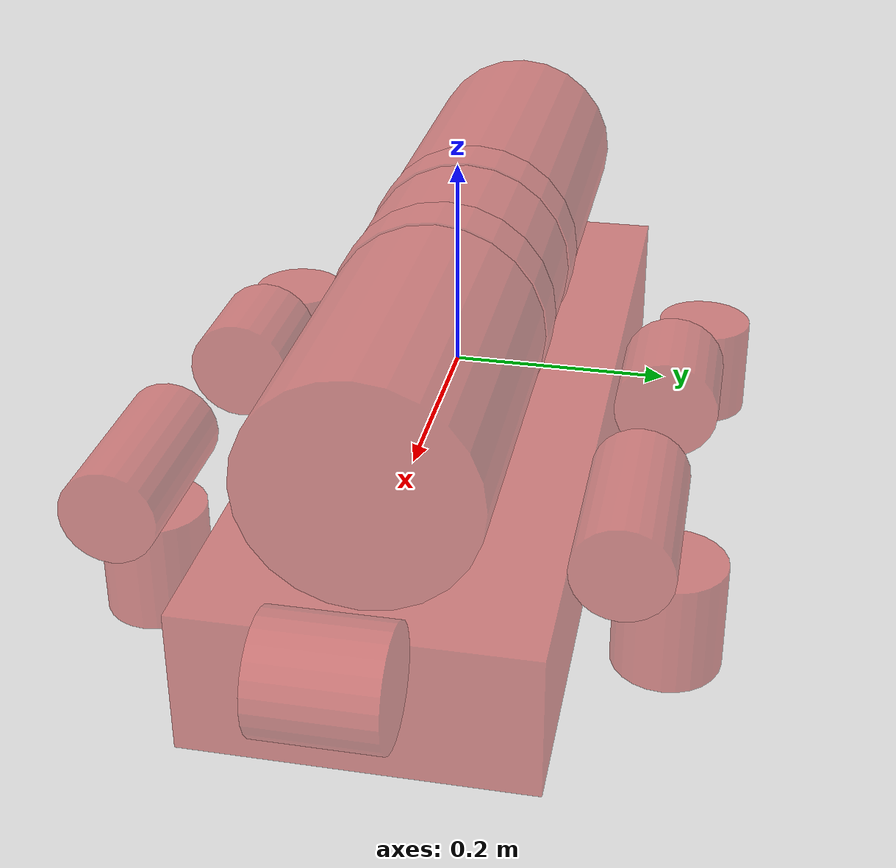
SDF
<?xml version='1.0'?>
<sdf version='1.5'>

  <model name='cobalt_vis'>
    <pose>0 0 0.0 0 0 0</pose>
    <self_collide> 0 </self_collide>
    <static>true</static>

    <joint name="hull_frame" type="fixed">
        <parent>frame</parent>
        <child>hull</child>
    </joint>

    <joint name='dive_front_left_frame' type="fixed">
        <parent>frame</parent>
        <child>dive_front_left</child>
    </joint>

    <joint name='dive_front_right_frame' type="fixed">
        <parent>frame</parent>
        <child>dive_front_right</child>
    </joint>

    <joint name='dive_back_left_frame' type="fixed">
        <parent>frame</parent>
        <child>dive_back_left</child>
    </joint>

    <joint name='dive_back_right_frame' type="fixed">
        <parent>frame</parent>
        <child>dive_back_right</child>
    </joint>

    <joint name='strafe_front_frame' type="fixed">
        <parent>frame</parent>
        <child>strafe_front</child>
    </joint>

    <joint name='strafe_back_frame' type="fixed">
        <parent>frame</parent>
        <child>strafe_back</child>
    </joint>

    <joint name='forward_left_frame' type="fixed">
        <parent>frame</parent>
        <child>forward_left</child>
    </joint>

    <joint name='forward_right_frame' type="fixed">
        <parent>frame</parent>
        <child>forward_right</child>
    </joint>

    <joint name='left_camera_frame' type="fixed">
        <parent>frame</parent>
        <child>left_camera</child>
    </joint>

    <joint name='right_camera_frame' type="fixed">
        <parent>frame</parent>
        <child>right_camera</child>
    </joint>

    <joint name='hydrophone_h0_frame' type="fixed">
        <parent>frame</parent>
        <child>hydrophone_h0</child>
    </joint>

    <joint name='hydrophone_hx_frame' type="fixed">
        <parent>frame</parent>
        <child>hydrophone_hx</child>
    </joint>

    <joint name='hydrophone_hy_frame' type="fixed">
        <parent>frame</parent>
        <child>hydrophone_hy</child>
    </joint>

    <joint name='hydrophone_hz_frame' type="fixed">
        <parent>frame</parent>
        <child>hydrophone_hz</child>
    </joint>

    <link name='hull'>
      <pose>0 0 .082 1.57079632679 0 1.57079632679 </pose>
      <visual name='bulkhead_visual'>
        <geometry>
              <cylinder>
                <radius>0.1</radius>
                <length>.13</length>
              </cylinder>
        </geometry>
        <material>
            <script>
              <uri>file://media/materials/scripts/gazebo.material</uri>
              <name>Gazebo/RedGlow</name>
            </script>
          </material>
        <transparency>0.5</transparency>
      </visual>
      <visual name='front_ring_visual'>
      <pose>0 0 .075 0 0 0</pose>
        <geometry>
              <cylinder>
                <radius>0.102</radius>
                <length>.05</length>
              </cylinder>
        </geometry>
        <material>
            <script>
              <uri>file://media/materials/scripts/gazebo.material</uri>
              <name>Gazebo/RedGlow</name>
            </script>
          </material>
        <transparency>0.5</transparency>
      </visual>
      <visual name='rear_ring_visual'>
      <pose>0 0 -.075 0 0 0</pose>
        <geometry>
              <cylinder>
                <radius>0.102</radius>
                <length>.05</length>
              </cylinder>
        </geometry>
        <material>
            <script>
              <uri>file://media/materials/scripts/gazebo.material</uri>
              <name>Gazebo/RedGlow</name>
            </script>
          </material>
        <transparency>0.5</transparency>
      </visual>
      <visual name='front_tube_visual'>
      <pose>0 0 .235 0 0 0</pose>
        <geometry>
              <cylinder>
                <radius>0.1</radius>
                <length>.32</length>
              </cylinder>
        </geometry>
        <material>
            <script>
              <uri>file://media/materials/scripts/gazebo.material</uri>
              <name>Gazebo/RedGlow</name>
            </script>
            <diffuse>0.6 0.6 0.6 0.6</diffuse>
          </material>
        <transparency>0.5</transparency>
      </visual>
      <visual name='rear_tube_visual'>
      <pose>0 0 -.235 0 0 0</pose>
        <geometry>
              <cylinder>
                <radius>0.1</radius>
                <length>.32</length>
              </cylinder>
        </geometry>
        <material>
            <script>
              <uri>file://media/materials/scripts/gazebo.material</uri>
              <name>Gazebo/RedGlow</name>
            </script>
            <diffuse>0.6 0.6 0.6 0.6</diffuse>
          </material>
        <transparency>0.5</transparency>
      </visual>
    </link>

    <link name='hydrophone_h0'>
      <pose> 0 0 0 0 0 0 </pose>
    </link>

    <link name='hydrophone_hx'>
      <pose> 3 0 0 0 0 0 </pose>
    </link>

    <link name='hydrophone_hy'>
      <pose> 0 3 0 0 0 0 </pose>
    </link>

    <link name='hydrophone_hz'>
      <pose> 0 0 3 0 0 0 </pose>
    </link>

    <link name='frame'>
      <pose>0 0 -0.088 0 0 0</pose>
      <visual name='frame_visual'>
        <geometry>
              <box>
                <size>.85 .3 .13</size>
              </box>
            </geometry>
          <material>
            <script>
              <uri>file://media/materials/scripts/gazebo.material</uri>
              <name>Gazebo/RedGlow</name>
            </script>
          </material>
        <transparency>0.5</transparency>
      </visual>

    </link>

    <link name='dive_front_left'>
      <pose>0.235 0.23 -0.1 0 3.14159 0</pose>
      <visual name='dive_front_left_visual'>
        <geometry>
          <cylinder>
            <radius>0.0485</radius>
            <length>0.101</length>
          </cylinder>
        </geometry>
      <material>
        <script>
          <uri>file://media/materials/scripts/gazebo.material</uri>
          <name>Gazebo/RedGlow</name>
        </script>
      </material>
        <transparency>0.5</transparency>
      </visual>
    </link>

    <link name='dive_front_right'>
      <pose>0.235 -0.23 -0.1 0 3.14159 0</pose>
      <visual name='dive_front_right_visual'>
        <geometry>
          <cylinder>
            <radius>0.0485</radius>
            <length>0.101</length>
          </cylinder>
        </geometry>
      <material>
        <script>
          <uri>file://media/materials/scripts/gazebo.material</uri>
          <name>Gazebo/RedGlow</name>
        </script>
      </material>
        <transparency>0.5</transparency>
      </visual>
    </link>

    <link name='dive_back_left'>
      <pose>-0.235 0.23 -0.1 0 3.14159 0</pose>
      <visual name='dive_back_left_visual'>
        <geometry>
          <cylinder>
            <radius>0.0485</radius>
            <length>0.101</length>
          </cylinder>
        </geometry>
      <material>
        <script>
          <uri>file://media/materials/scripts/gazebo.material</uri>
          <name>Gazebo/RedGlow</name>
        </script>
      </material>
        <transparency>0.5</transparency>
      </visual>
    </link>

    <link name='dive_back_right'>
      <pose>-0.235 -0.23 -0.1 0 3.14159 0</pose>
      <visual name='dive_back_right_visual'>
        <geometry>
          <cylinder>
            <radius>0.0485</radius>
            <length>0.101</length>
          </cylinder>
        </geometry>
      <material>
        <script>
          <uri>file://media/materials/scripts/gazebo.material</uri>
          <name>Gazebo/RedGlow</name>
        </script>
      </material>
        <transparency>0.5</transparency>
      </visual>
    </link>

    <link name='strafe_front'>
      <pose>0.49 0 -0.01 -1.57079632679 0 0</pose>
      <visual name='strafe_front_visual'>
        <geometry>
          <cylinder>
            <radius>0.0485</radius>
            <length>0.101</length>
          </cylinder>
        </geometry>
      <material>
        <script>
          <uri>file://media/materials/scripts/gazebo.material</uri>
          <name>Gazebo/RedGlow</name>
        </script>
      </material>
        <transparency>0.5</transparency>
      </visual>
    </link>

    <link name='strafe_back'>
      <pose>-0.49 0 -0.01 -1.57079632679 0 0</pose>
      <visual name='strafe_back_visual'>
        <geometry>
          <cylinder>
            <radius>0.0485</radius>
            <length>0.101</length>
          </cylinder>
        </geometry>
      <material>
        <script>
          <uri>file://media/materials/scripts/gazebo.material</uri>
          <name>Gazebo/RedGlow</name>
        </script>
      </material>
        <transparency>0.5</transparency>
      </visual>
    </link>

    <link name='forward_left'>
      <pose>0 0.2075 -0.01 0 -1.57079632679 0</pose>
      <visual name='forward_left_visual'>
        <geometry>
          <cylinder>
            <radius>0.0485</radius>
            <length>0.101</length>
          </cylinder>
        </geometry>
      <material>
        <script>
          <uri>file://media/materials/scripts/gazebo.material</uri>
          <name>Gazebo/RedGlow</name>
        </script>
      </material>
        <transparency>0.5</transparency>
      </visual>
    </link>

    <link name='forward_right'>
      <pose>0 -0.2075 -0.01 0 -1.57079632679 0</pose>
      <visual name='forward_right_visual'>
        <geometry>
          <cylinder>
            <radius>0.0485</radius>
            <length>0.101</length>
          </cylinder>
        </geometry>
      <material>
        <script>
          <uri>file://media/materials/scripts/gazebo.material</uri>
          <name>Gazebo/RedGlow</name>
        </script>
      </material>
        <transparency>0.5</transparency>
      </visual>
    </link>

    <link name='left_camera'>
      <pose>0.32 0.20 0.04 0 1.57079632679 0</pose>
      <visual name='left_camera_visual'>
        <geometry>
          <cylinder>
            <radius>0.0405</radius>
            <length>0.15</length>
          </cylinder>
        </geometry>
      <material>
        <script>
          <uri>file://media/materials/scripts/gazebo.material</uri>
          <name>Gazebo/RedGlow</name>
        </script>
      </material>
        <transparency>0.5</transparency>
      </visual>
    </link>

    <link name='right_camera'>
      <pose>0.32 -0.20 0.04 0 1.57079632679 0</pose>
      <visual name='right_camera_visual'>
        <geometry>
          <cylinder>
            <radius>0.0405</radius>
            <length>0.15</length>
          </cylinder>
        </geometry>
      <material>
        <script>
          <uri>file://media/materials/scripts/gazebo.material</uri>
          <name>Gazebo/RedGlow</name>
        </script>
      </material>
        <transparency>0.5</transparency>
      </visual>
    </link>

    <allow_auto_disable>0</allow_auto_disable>

  </model>
</sdf>
